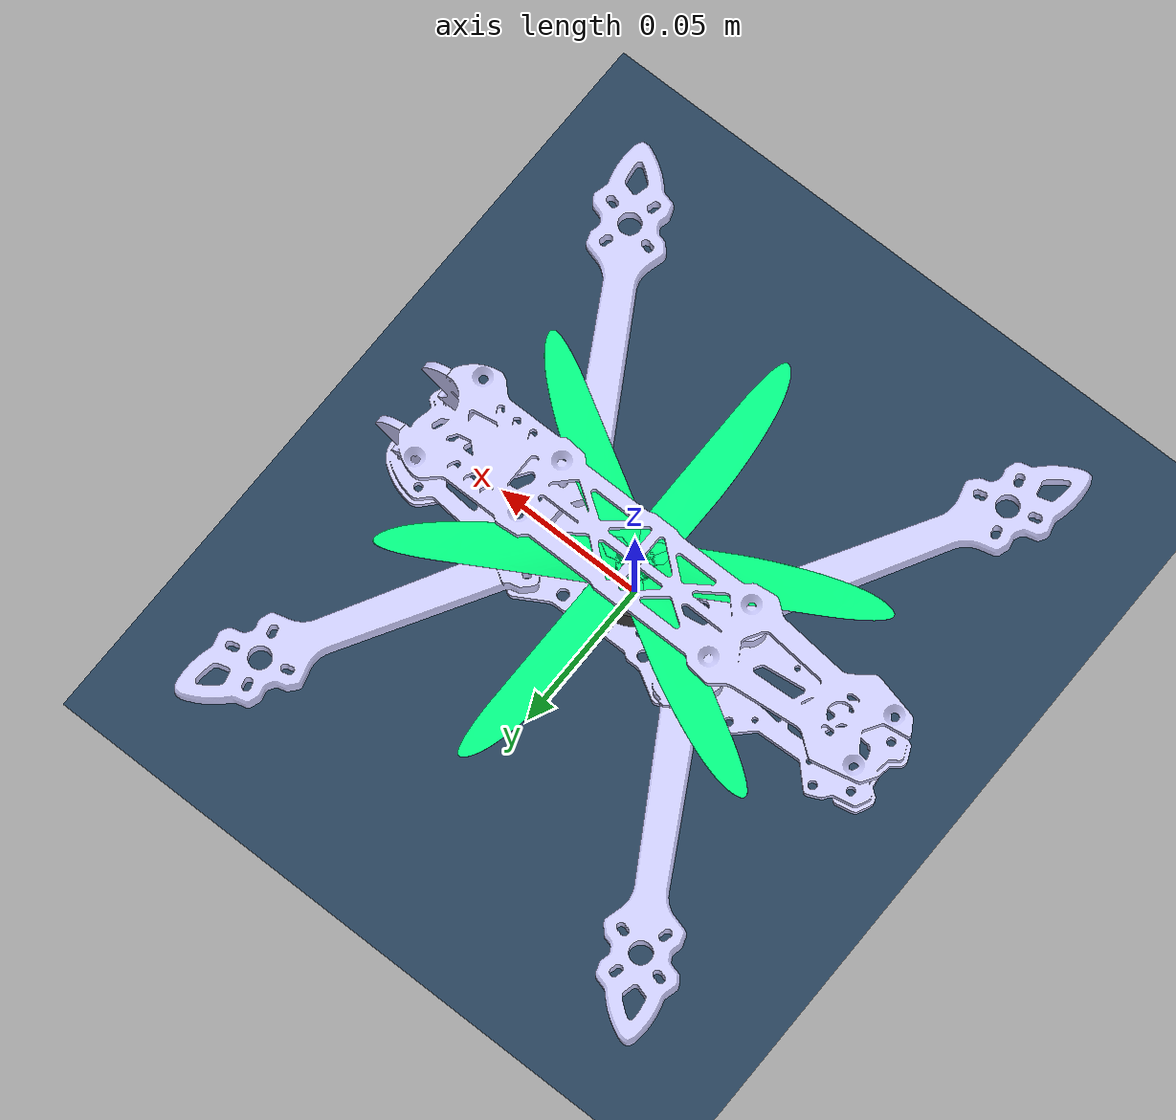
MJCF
<mujoco model="quad">
  <compiler angle="degree" inertiafromgeom="false" autolimits="true" eulerseq="zyx"  meshdir="assets"/>
  <option apirate="500" integrator="RK4" density="0" viscosity="0" gravity="0 0 -9.805" wind="0 0 0"/>

  <visual>
    <scale com="0.05" forcewidth="0.05" framelength="3.0" framewidth="0.3"/>
    <rgba haze="0.15 0.25 0.35 1"/>
    <global azimuth="0.0" elevation="-90" ellipsoidinertia="true" bvactive="false"/>
    <quality shadowsize="0" offsamples="0"/>
  </visual>

  <asset>
    <texture type="skybox" builtin="gradient" rgb1=".3 .5 .7" rgb2="0.5 0.5 0.5" width="32" height="512"/>
    <texture name="grid" type="2d" builtin="checker" width="512" height="512" rgb1=".1 .2 .3" rgb2=".2 .3 .4"/>
    <material name="grid" texture="grid" texrepeat="1 1" texuniform="true" reflectance=".2"
      emission=".5" shininess="0.4" />

    <material name="black" rgba="0.235 0.235 0.235 1"/>
    <material name="white" rgba="1 1 1 1"/>
    <material name="red" rgba="0.7 0 0 1"/>
    <material name="green_blue" rgba="0 1 0.5 1"/>
    <material name="light_blue" rgba="0.8 0.8 1 1"/>
    <material name="light_purple" rgba="0.8 0.6 1 1"/>
    <material name="orange" rgba="1 0.502 0 1"/>
    <mesh file="motor.stl"/>
    <mesh file="propeller_p.stl"/>
    <mesh file="propeller_n.stl"/>
    <mesh file="GEPRC_MK4_5in_blender.stl"/>

      <!-- 定义高亮材质：漫反射拉满(1 1 1) + 柔和高光 + 精致光泽度 -->
    <material name="bright_mat"
              rgba="1.0 0.0 0.0 1.0"
              specular="0.5"
              shininess="50"/>
  </asset>

  <worldbody>
    <geom name="floor" pos="0 0 0" size="0 0 .25" type="plane" material="grid" condim="3" />
    <light name="spotlight" mode="targetbodycom" target="quad"
      diffuse=".8 .8 .8" specular="0.3 0.3 0.3" ambient="0.3 0.3 0.3" pos="0 0 10" cutoff="30"/>
    <light name="top" pos="0 0 2" mode="trackcom"/>
    <camera name="capture_cam" pos="62.50 -108.25 125.00" euler="60 0 60"/>

    <!-- 机架底部比机体原点低约 2.25 mm；从地面起始并留 0.05 mm 间隙，避免初始穿地。 -->
    <body name="quad" pos="0 0 0.0023">
      <camera name="track_cam" pos="-2 0 1" euler="-90 0 60" mode="track"/>
      <camera name="fpv" pos="0 0 0.3" euler="-90 0 180" resolution="3280 2464" focal="1.88e-3 1.88e-3" sensorsize="3.936e-3 2.9568e-3"/>
      <freejoint/>
      <inertial pos="0 0 0" mass="0.7311" diaginertia="2.4813e-3 2.6667e-3 4.3365e-3"/>
      <geom mesh="GEPRC_MK4_5in_blender" type="mesh" material="light_blue" euler="-90 0 0"/>

      <body name="motor1">
        <joint name="motor1" axis="0 0 1"/>
        <inertial pos="0 0 0" mass="1e-10" diaginertia="1e-10 1e-10 1e-10"/>
        <geom mesh="motor" type="mesh" material="black"/>
        <geom name="prop1" mesh="propeller_n" type="mesh" material="green_blue" pos="0 0 0.0202"/>
      </body>
      <body name="motor2">
        <joint name="motor2" axis="0 0 1"/>
        <inertial pos="0 0 0" mass="1e-10" diaginertia="1e-10 1e-10 1e-10"/>
        <geom mesh="motor" type="mesh" material="black"/>
        <geom name="prop2" mesh="propeller_n" type="mesh" material="green_blue" pos="0 0 0.0202"/>
      </body>
      <body name="motor3">
        <joint name="motor3" axis="0 0 1"/>
        <inertial pos="0 0 0" mass="1e-10" diaginertia="1e-10 1e-10 1e-10"/>
        <geom mesh="motor" type="mesh" material="black"/>
        <geom name="prop3" mesh="propeller_p" type="mesh" material="green_blue" pos="0 0 0.0202"/>
      </body>
      <body name="motor4">
        <joint name="motor4" axis="0 0 1"/>
        <inertial pos="0 0 0" mass="1e-10" diaginertia="1e-10 1e-10 1e-10"/>
        <geom mesh="motor" type="mesh" material="black"/>
        <geom name="prop4" mesh="propeller_p" type="mesh" material="green_blue" pos="0 0 0.0202"/>
      </body>

      <site name="quad_sensor_site"/>

    </body>
  </worldbody>

  <sensor>
    <gyro name="body_angvel" site="quad_sensor_site"/> <!-- 体轴系 -->
    <accelerometer name="body_linacc" site="quad_sensor_site"/> <!-- 体轴系 -->
    <framequat name="body_quat" objtype="body" objname="quad"/>
    <framelinvel name="body_vel" objtype="body" objname="quad"/>
    <framepos name="body_pos" objtype="body" objname="quad"/>

    <framepos name="fpv_pos" objtype="camera" objname="fpv"/>

  </sensor>
</mujoco>
